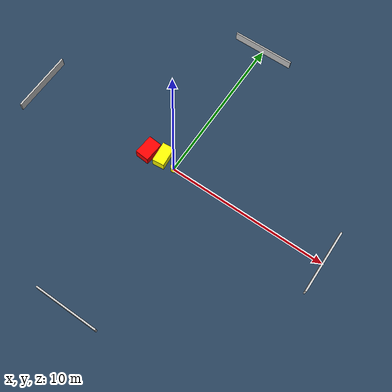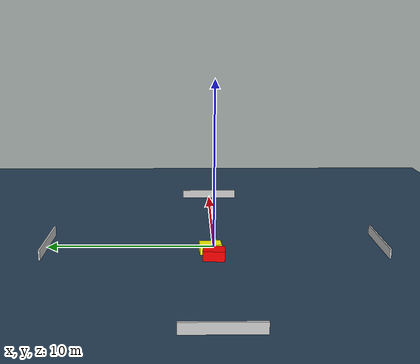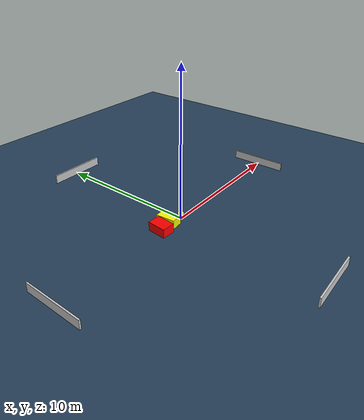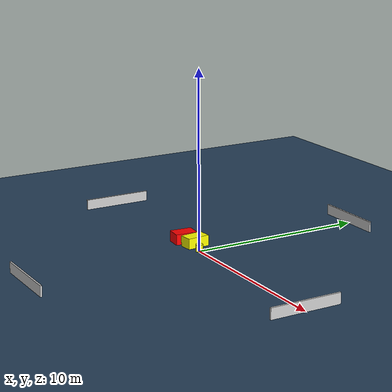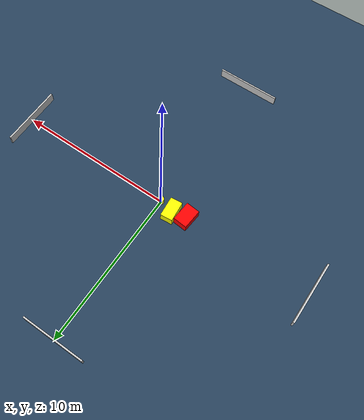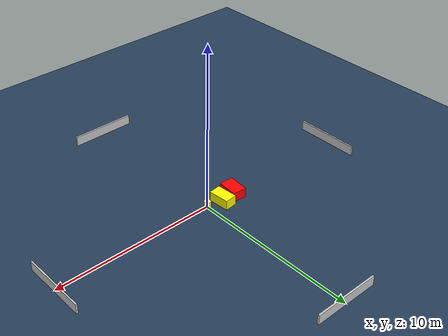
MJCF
<?xml version="1.0" ?>
<mujoco model="generated_environment">
  <option timestep="0.01" integrator="RK4" cone="elliptic"/>
  <default>
    <geom density="1"/>
  </default>
  <asset>
    <texture builtin="gradient" height="3072" name="skybox" rgb1="0.3 0.5 0.7" rgb2="0 0 0" type="skybox" width="512"/>
    <texture builtin="checker" height="300" name="groundplane" rgb1="0.2 0.3 0.4" rgb2="0.1 0.2 0.3" type="2d" width="300"/>
    <material name="groundplane" reflectance="0.2" texrepeat="5 5" texture="groundplane"/>
  </asset>
  <worldbody>
    <light dir="0 0 -1" directional="true" pos="0 0 1.5"/>
    <geom condim="3" friction="0.5 0.005 0.001" material="groundplane" name="floor" pos="0 0 0" size="0 0 0.05" type="plane"/>
    <body name="walls">
      <geom name="wall_1" condim="4" pos="-10.0 0.0 0.3" rgba="0.800000011920929 0.800000011920929 0.800000011920929 1.0" size="0.05 2.0 0.3" type="box"/>
      <geom name="wall_2" condim="4" pos="10.0 0.0 0.3" rgba="0.800000011920929 0.800000011920929 0.800000011920929 1.0" size="0.05 2.0 0.3" type="box"/>
      <geom name="wall_3" condim="4" pos="0.0 -10.0 0.3" rgba="0.800000011920929 0.800000011920929 0.800000011920929 1.0" size="2.0 0.05 0.3" type="box"/>
      <geom name="wall_4" condim="4" pos="0.0 10.0 0.3" rgba="0.800000011920929 0.800000011920929 0.800000011920929 1.0" size="2.0 0.05 0.3" type="box"/>
    </body>
    <body name="robot">
      <joint name="joint_x" type="slide" pos="0 0 0" axis="1 0 0"/>
      <joint name="joint_y" type="slide" pos="0 0 0" axis="0 1 0"/>
      <geom name="robot" type="cylinder" pos="0.0 0.0 0.2" size="0.2 0.2 0.0" mass="5.0" friction="1.0 0.005 0.0001" condim="4" rgba="1.0 1.0 0.0 1.0"/>
    </body>
    <body name="obstacle_1_movable">
      <geom name="obstacle_1_movable" condim="4" pos="-0.9262447690742108 0.2540182584668167 0.3" euler="0 0 95.03127176322559" friction="0.0 0.005 0.001" rgba="1.0 1.0 0.0 1.0" size="0.6378067472895321 0.3769383190686837 0.3" type="box" mass="0.1"/>
      <joint type="free"/>
    </body>
    <body name="obstacle_2_static">
      <geom name="obstacle_2_static" condim="4" pos="-1.8594197046301888 0.07182703808249774 0.3" euler="0 0 265.2407129085448" friction="0.0 0.005 0.001" rgba="1.0 0.0 0.0 1.0" size="0.6294887283499466 0.43636354042956904 0.3" type="box"/>
    </body>
  </worldbody>
  <actuator>
    <motor name="actuator_x" joint="joint_x" gear="1" ctrlrange="-1 1"/>
    <motor name="actuator_y" joint="joint_y" gear="1" ctrlrange="-1 1"/>
  </actuator>
</mujoco>
